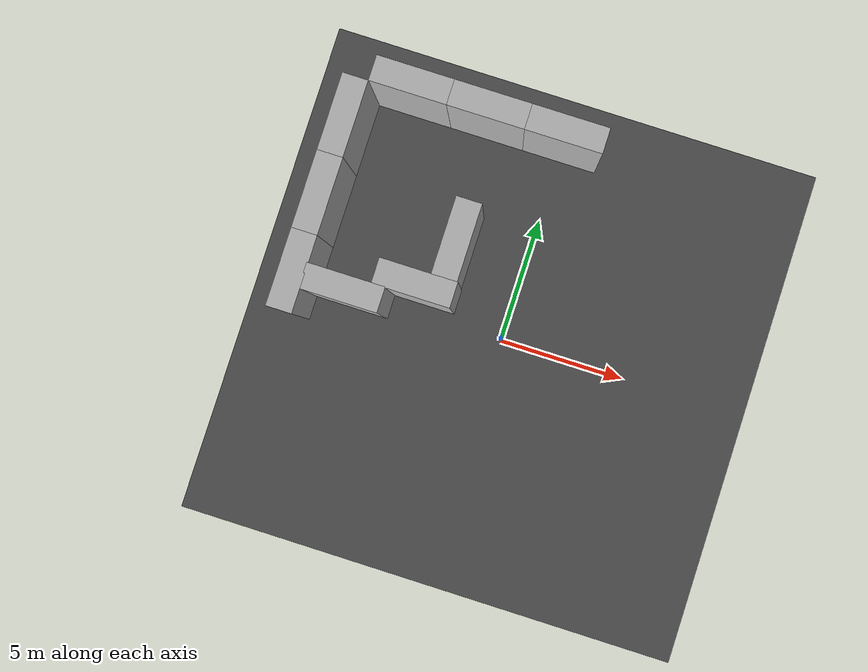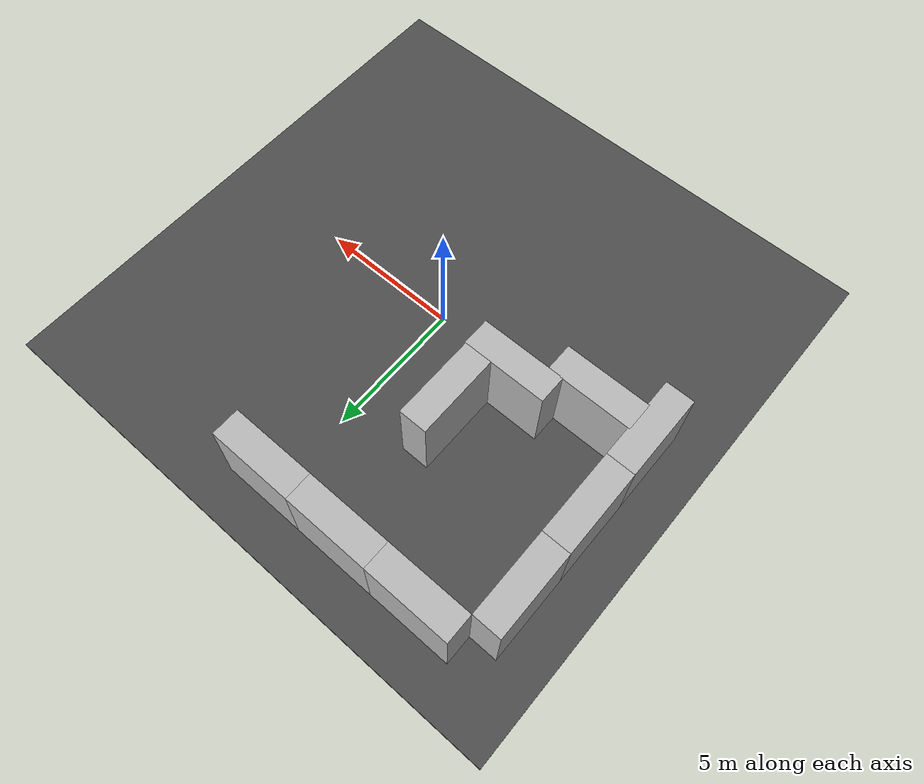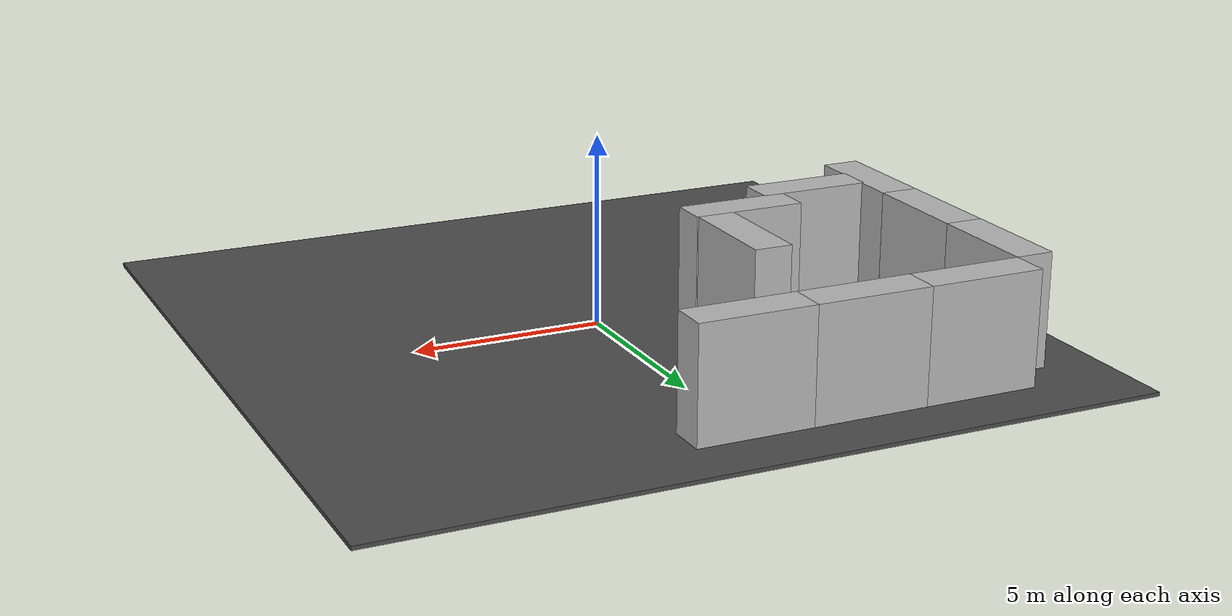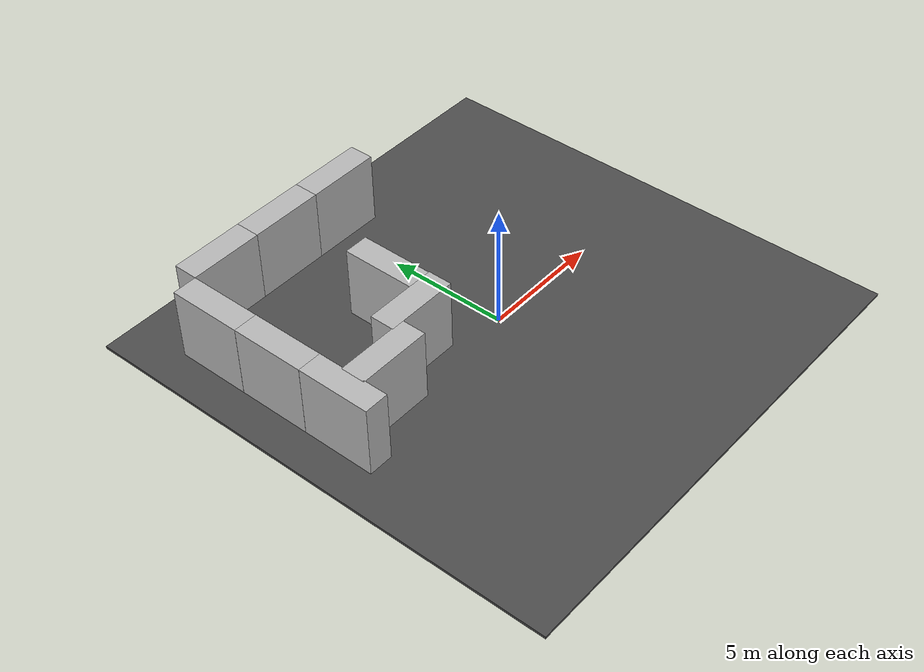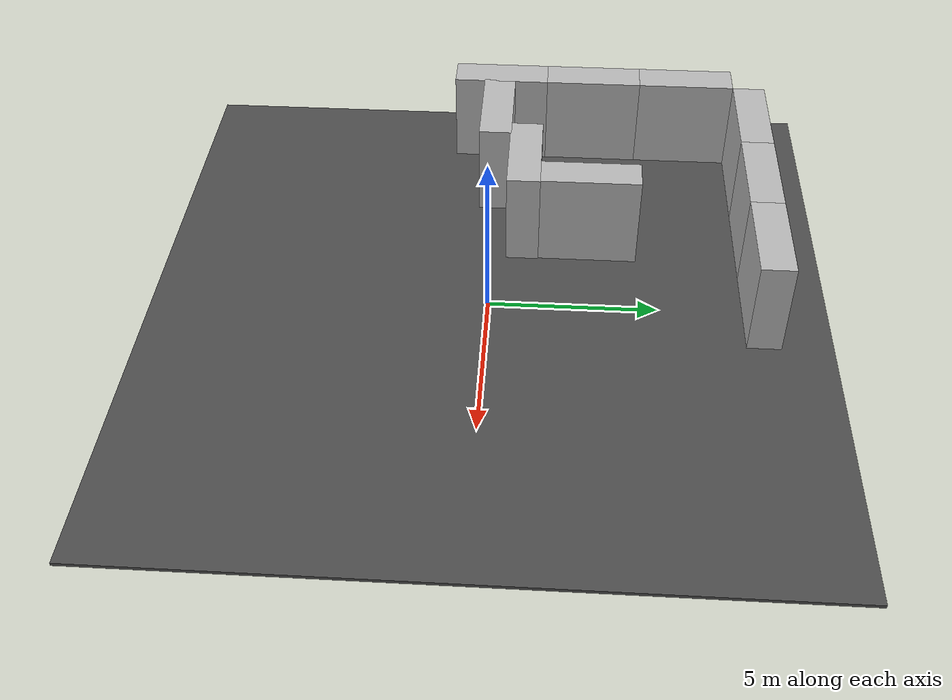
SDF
<sdf version="1.7">
 <world name="default">
  <model name="asphalt_plane">
   <static>1</static>
   <link name="link">
    <collision name="collision"><geometry><box><size>20 20 0.1</size></box></geometry></collision>
    <visual name="visual">
     <cast_shadows>0</cast_shadows>
     <geometry><box><size>20 20 0.1</size></box></geometry>
     <material>
      <script>
       <uri>model://asphalt_plane/materials/scripts</uri>
       <uri>model://asphalt_plane/materials/textures</uri>
       <name>vrc/asphalt</name>
      </script>
     </material>
    </visual>
    <velocity_decay><linear>0</linear><angular>0</angular></velocity_decay>
   </link>
  </model>
  <model name="brick_box_3x1x3">
   <static>1</static>
   <link name="chassis">
    <pose>0 0 1.5 0 -0 0</pose>
    <collision name="collision"><geometry><box><size>3 1 3</size></box></geometry></collision>
    <visual name="visual">
     <geometry><mesh><uri>model://brick_box_3x1x3/meshes/simple_box.dae</uri><scale>3 1 3</scale></mesh></geometry>
     <material>
      <script>
       <uri>model://brick_box_3x1x3/materials/scripts</uri>
       <uri>model://brick_box_3x1x3/materials/textures</uri>
       <name>BrickBox/Diffuse</name>
      </script>
     </material>
    </visual>
    <velocity_decay><linear>0</linear><angular>0</angular></velocity_decay>
   </link>
   <pose>0 8 0 0 -0 0</pose>
  </model>
  <model name="brick_box_3x1x3_2">
   <static>1</static>
   <link name="chassis">
    <pose>0 0 1.5 0 -0 0</pose>
    <collision name="collision"><geometry><box><size>3 1 3</size></box></geometry></collision>
    <visual name="visual">
     <geometry><mesh><uri>model://brick_box_3x1x3/meshes/simple_box.dae</uri><scale>3 1 3</scale></mesh></geometry>
     <material>
      <script>
       <uri>model://brick_box_3x1x3/materials/scripts</uri>
       <uri>model://brick_box_3x1x3/materials/textures</uri>
       <name>BrickBox/Diffuse</name>
      </script>
     </material>
    </visual>
    <velocity_decay><linear>0</linear><angular>0</angular></velocity_decay>
   </link>
   <pose>-3 8 0 0 -0 0</pose>
  </model>
  <model name="brick_box_3x1x3_3">
   <static>1</static>
   <link name="chassis">
    <pose>0 0 1.5 0 -0 0</pose>
    <collision name="collision"><geometry><box><size>3 1 3</size></box></geometry></collision>
    <visual name="visual">
     <geometry><mesh><uri>model://brick_box_3x1x3/meshes/simple_box.dae</uri><scale>3 1 3</scale></mesh></geometry>
     <material>
      <script>
       <uri>model://brick_box_3x1x3/materials/scripts</uri>
       <uri>model://brick_box_3x1x3/materials/textures</uri>
       <name>BrickBox/Diffuse</name>
      </script>
     </material>
    </visual>
    <velocity_decay><linear>0</linear><angular>0</angular></velocity_decay>
   </link>
   <pose>-6 8 0 0 -0 0</pose>
  </model>
  <model name="brick_box_3x1x3_9">
   <static>1</static>
   <link name="chassis">
    <pose>0 0 1.5 0 -0 0</pose>
    <collision name="collision"><geometry><box><size>3 1 3</size></box></geometry></collision>
    <visual name="visual">
     <geometry><mesh><uri>model://brick_box_3x1x3/meshes/simple_box.dae</uri><scale>3 1 3</scale></mesh></geometry>
     <material>
      <script>
       <uri>model://brick_box_3x1x3/materials/scripts</uri>
       <uri>model://brick_box_3x1x3/materials/textures</uri>
       <name>BrickBox/Diffuse</name>
      </script>
     </material>
    </visual>
    <velocity_decay><linear>0</linear><angular>0</angular></velocity_decay>
   </link>
   <pose>-8 6 0 0 -0 1.57</pose>
  </model>
  <model name="brick_box_3x1x3_10">
   <static>1</static>
   <link name="chassis">
    <pose>0 0 1.5 0 -0 0</pose>
    <collision name="collision"><geometry><box><size>3 1 3</size></box></geometry></collision>
    <visual name="visual">
     <geometry><mesh><uri>model://brick_box_3x1x3/meshes/simple_box.dae</uri><scale>3 1 3</scale></mesh></geometry>
     <material>
      <script>
       <uri>model://brick_box_3x1x3/materials/scripts</uri>
       <uri>model://brick_box_3x1x3/materials/textures</uri>
       <name>BrickBox/Diffuse</name>
      </script>
     </material>
    </visual>
    <velocity_decay><linear>0</linear><angular>0</angular></velocity_decay>
   </link>
   <pose>-8 3 0 0 -0 1.57</pose>
  </model>
  <model name="brick_box_3x1x3_11">
   <static>1</static>
   <link name="chassis">
    <pose>0 0 1.5 0 -0 0</pose>
    <collision name="collision"><geometry><box><size>3 1 3</size></box></geometry></collision>
    <visual name="visual">
     <geometry><mesh><uri>model://brick_box_3x1x3/meshes/simple_box.dae</uri><scale>3 1 3</scale></mesh></geometry>
     <material>
      <script>
       <uri>model://brick_box_3x1x3/materials/scripts</uri>
       <uri>model://brick_box_3x1x3/materials/textures</uri>
       <name>BrickBox/Diffuse</name>
      </script>
     </material>
    </visual>
    <velocity_decay><linear>0</linear><angular>0</angular></velocity_decay>
   </link>
   <pose>-8 0 0 0 -0 1.57</pose>
  </model>
  <model name="brick_box_3x1x3_20_clone">
   <static>1</static>
   <link name="chassis">
    <pose>0 0 1.5 0 -0 0</pose>
    <collision name="collision"><geometry><box><size>3 1 3</size></box></geometry></collision>
    <visual name="visual">
     <geometry><mesh><uri>model://brick_box_3x1x3/meshes/simple_box.dae</uri><scale>3 1 3</scale></mesh></geometry>
     <material>
      <script>
       <uri>model://brick_box_3x1x3/materials/scripts</uri>
       <uri>model://brick_box_3x1x3/materials/textures</uri>
       <name>BrickBox/Diffuse</name>
      </script>
     </material>
    </visual>
    <velocity_decay><linear>0</linear><angular>0</angular></velocity_decay>
   </link>
   <pose>-6.06413 -0.040403 0 0 -0 0</pose>
  </model>
  <model name="brick_box_3x1x3_20_clone_0">
   <static>1</static>
   <link name="chassis">
    <pose>0 0 1.5 0 -0 0</pose>
    <collision name="collision"><geometry><box><size>3 1 3</size></box></geometry></collision>
    <visual name="visual">
     <geometry><mesh><uri>model://brick_box_3x1x3/meshes/simple_box.dae</uri><scale>3 1 3</scale></mesh></geometry>
     <material>
      <script>
       <uri>model://brick_box_3x1x3/materials/scripts</uri>
       <uri>model://brick_box_3x1x3/materials/textures</uri>
       <name>BrickBox/Diffuse</name>
      </script>
     </material>
    </visual>
    <velocity_decay><linear>0</linear><angular>0</angular></velocity_decay>
   </link>
   <pose>-3.6009 0.927364 0 0 -0 0</pose>
  </model>
  <model name="brick_box_3x1x3_22_clone_clone">
   <static>1</static>
   <link name="chassis">
    <pose>0 0 1.5 0 -0 0</pose>
    <collision name="collision"><geometry><box><size>3 1 3</size></box></geometry></collision>
    <visual name="visual">
     <geometry><mesh><uri>model://brick_box_3x1x3/meshes/simple_box.dae</uri><scale>3 1 3</scale></mesh></geometry>
     <material>
      <script>
       <uri>model://brick_box_3x1x3/materials/scripts</uri>
       <uri>model://brick_box_3x1x3/materials/textures</uri>
       <name>BrickBox/Diffuse</name>
      </script>
     </material>
    </visual>
    <velocity_decay><linear>0</linear><angular>0</angular></velocity_decay>
   </link>
   <pose>-2.63074 2.9213 0 0 -0 1.57</pose>
  </model>
 </world>
</sdf>
